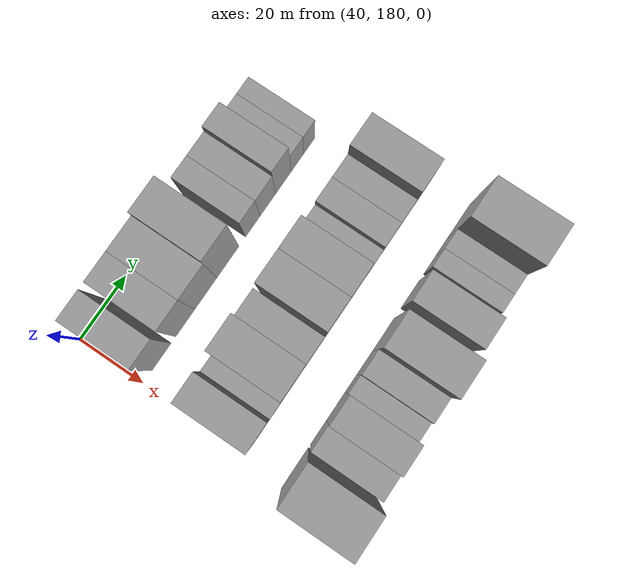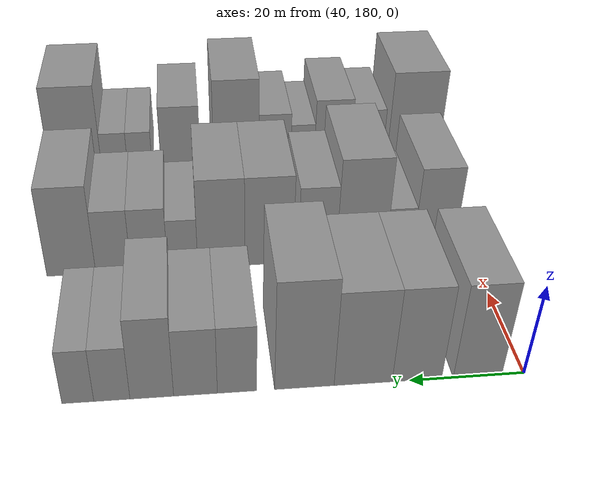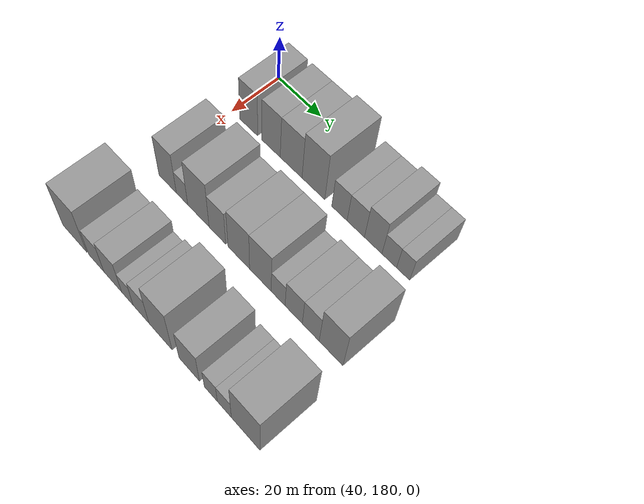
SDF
<sdf version="1.6">
 <world name="default">
  <model name="building_63">
   <static>1</static>
   <pose>50.0000 188.1334 0 0.000000 0.000000 0.000000</pose>
   <link name="link">
    <pose>0 0 10.50 0 0 0</pose>
    <collision name="collision"><geometry><box><size>20.0000 8.5099 21.0000</size></box></geometry></collision>
    <visual name="visual">
     <cast_shadows>0</cast_shadows>
     <geometry><box><size>20.0000 8.5099 21.0000</size></box></geometry>
     <material>
      <script>
       <uri>model://grey_wall/materials/scripts</uri>
       <uri>model://grey_wall/materials/textures</uri>
       <name>vrc/grey_wall</name>
      </script>
     </material>
    </visual>
   </link>
  </model>
  <model name="building_64">
   <static>1</static>
   <pose>50.0000 198.6740 0 0.000000 0.000000 0.000000</pose>
   <link name="link">
    <pose>0 0 10.50 0 0 0</pose>
    <collision name="collision"><geometry><box><size>20.0000 8.5712 21.0000</size></box></geometry></collision>
    <visual name="visual">
     <cast_shadows>0</cast_shadows>
     <geometry><box><size>20.0000 8.5712 21.0000</size></box></geometry>
     <material>
      <script>
       <uri>model://grey_wall/materials/scripts</uri>
       <uri>model://grey_wall/materials/textures</uri>
       <name>vrc/grey_wall</name>
      </script>
     </material>
    </visual>
   </link>
  </model>
  <model name="building_65">
   <static>1</static>
   <pose>50.0000 207.9277 0 0.000000 0.000000 0.000000</pose>
   <link name="link">
    <pose>0 0 10.50 0 0 0</pose>
    <collision name="collision"><geometry><box><size>20.0000 9.9363 21.0000</size></box></geometry></collision>
    <visual name="visual">
     <cast_shadows>0</cast_shadows>
     <geometry><box><size>20.0000 9.9363 21.0000</size></box></geometry>
     <material>
      <script>
       <uri>model://grey_wall/materials/scripts</uri>
       <uri>model://grey_wall/materials/textures</uri>
       <name>vrc/grey_wall</name>
      </script>
     </material>
    </visual>
   </link>
  </model>
  <model name="building_66">
   <static>1</static>
   <pose>50.0000 217.9356 0 0.000000 0.000000 0.000000</pose>
   <link name="link">
    <pose>0 0 12.00 0 0 0</pose>
    <collision name="collision"><geometry><box><size>20.0000 10.0795 24.0000</size></box></geometry></collision>
    <visual name="visual">
     <cast_shadows>0</cast_shadows>
     <geometry><box><size>20.0000 10.0795 24.0000</size></box></geometry>
     <material>
      <script>
       <uri>model://grey_wall/materials/scripts</uri>
       <uri>model://grey_wall/materials/textures</uri>
       <name>vrc/grey_wall</name>
      </script>
     </material>
    </visual>
   </link>
  </model>
  <model name="building_67">
   <static>1</static>
   <pose>50.0000 229.2814 0 0.000000 0.000000 0.000000</pose>
   <link name="link">
    <pose>0 0 7.50 0 0 0</pose>
    <collision name="collision"><geometry><box><size>20.0000 6.6119 15.0000</size></box></geometry></collision>
    <visual name="visual">
     <cast_shadows>0</cast_shadows>
     <geometry><box><size>20.0000 6.6119 15.0000</size></box></geometry>
     <material>
      <script>
       <uri>model://grey_wall/materials/scripts</uri>
       <uri>model://grey_wall/materials/textures</uri>
       <name>vrc/grey_wall</name>
      </script>
     </material>
    </visual>
   </link>
  </model>
  <model name="building_68">
   <static>1</static>
   <pose>50.0000 236.2317 0 0.000000 0.000000 0.000000</pose>
   <link name="link">
    <pose>0 0 7.50 0 0 0</pose>
    <collision name="collision"><geometry><box><size>20.0000 7.2888 15.0000</size></box></geometry></collision>
    <visual name="visual">
     <cast_shadows>0</cast_shadows>
     <geometry><box><size>20.0000 7.2888 15.0000</size></box></geometry>
     <material>
      <script>
       <uri>model://grey_wall/materials/scripts</uri>
       <uri>model://grey_wall/materials/textures</uri>
       <name>vrc/grey_wall</name>
      </script>
     </material>
    </visual>
   </link>
  </model>
  <model name="building_69">
   <static>1</static>
   <pose>50.0000 243.4868 0 0.000000 0.000000 0.000000</pose>
   <link name="link">
    <pose>0 0 9.00 0 0 0</pose>
    <collision name="collision"><geometry><box><size>20.0000 7.2214 18.0000</size></box></geometry></collision>
    <visual name="visual">
     <cast_shadows>0</cast_shadows>
     <geometry><box><size>20.0000 7.2214 18.0000</size></box></geometry>
     <material>
      <script>
       <uri>model://grey_wall/materials/scripts</uri>
       <uri>model://grey_wall/materials/textures</uri>
       <name>vrc/grey_wall</name>
      </script>
     </material>
    </visual>
   </link>
  </model>
  <model name="building_70">
   <static>1</static>
   <pose>50.0000 250.0693 0 0.000000 0.000000 0.000000</pose>
   <link name="link">
    <pose>0 0 6.00 0 0 0</pose>
    <collision name="collision"><geometry><box><size>20.0000 5.9436 12.0000</size></box></geometry></collision>
    <visual name="visual">
     <cast_shadows>0</cast_shadows>
     <geometry><box><size>20.0000 5.9436 12.0000</size></box></geometry>
     <material>
      <script>
       <uri>model://grey_wall/materials/scripts</uri>
       <uri>model://grey_wall/materials/textures</uri>
       <name>vrc/grey_wall</name>
      </script>
     </material>
    </visual>
   </link>
  </model>
  <model name="building_71">
   <static>1</static>
   <pose>50.0000 255.6571 0 0.000000 0.000000 0.000000</pose>
   <link name="link">
    <pose>0 0 6.00 0 0 0</pose>
    <collision name="collision"><geometry><box><size>20.0000 5.2319 12.0000</size></box></geometry></collision>
    <visual name="visual">
     <cast_shadows>0</cast_shadows>
     <geometry><box><size>20.0000 5.2319 12.0000</size></box></geometry>
     <material>
      <script>
       <uri>model://grey_wall/materials/scripts</uri>
       <uri>model://grey_wall/materials/textures</uri>
       <name>vrc/grey_wall</name>
      </script>
     </material>
    </visual>
   </link>
  </model>
  <model name="building_134">
   <static>1</static>
   <pose>82.0000 187.6518 0 0.000000 0.000000 0.000000</pose>
   <link name="link">
    <pose>0 0 10.50 0 0 0</pose>
    <collision name="collision"><geometry><box><size>20.0000 8.4010 21.0000</size></box></geometry></collision>
    <visual name="visual">
     <cast_shadows>0</cast_shadows>
     <geometry><box><size>20.0000 8.4010 21.0000</size></box></geometry>
     <material>
      <script>
       <uri>model://grey_wall/materials/scripts</uri>
       <uri>model://grey_wall/materials/textures</uri>
       <name>vrc/grey_wall</name>
      </script>
     </material>
    </visual>
   </link>
  </model>
  <model name="building_135">
   <static>1</static>
   <pose>82.0000 194.5746 0 0.000000 0.000000 0.000000</pose>
   <link name="link">
    <pose>0 0 6.00 0 0 0</pose>
    <collision name="collision"><geometry><box><size>20.0000 5.4446 12.0000</size></box></geometry></collision>
    <visual name="visual">
     <cast_shadows>0</cast_shadows>
     <geometry><box><size>20.0000 5.4446 12.0000</size></box></geometry>
     <material>
      <script>
       <uri>model://grey_wall/materials/scripts</uri>
       <uri>model://grey_wall/materials/textures</uri>
       <name>vrc/grey_wall</name>
      </script>
     </material>
    </visual>
   </link>
  </model>
  <model name="building_136">
   <static>1</static>
   <pose>82.0000 202.2947 0 0.000000 0.000000 0.000000</pose>
   <link name="link">
    <pose>0 0 12.00 0 0 0</pose>
    <collision name="collision"><geometry><box><size>20.0000 9.9957 24.0000</size></box></geometry></collision>
    <visual name="visual">
     <cast_shadows>0</cast_shadows>
     <geometry><box><size>20.0000 9.9957 24.0000</size></box></geometry>
     <material>
      <script>
       <uri>model://grey_wall/materials/scripts</uri>
       <uri>model://grey_wall/materials/textures</uri>
       <name>vrc/grey_wall</name>
      </script>
     </material>
    </visual>
   </link>
  </model>
  <model name="building_137">
   <static>1</static>
   <pose>82.0000 211.0833 0 0.000000 0.000000 0.000000</pose>
   <link name="link">
    <pose>0 0 9.00 0 0 0</pose>
    <collision name="collision"><geometry><box><size>20.0000 7.5814 18.0000</size></box></geometry></collision>
    <visual name="visual">
     <cast_shadows>0</cast_shadows>
     <geometry><box><size>20.0000 7.5814 18.0000</size></box></geometry>
     <material>
      <script>
       <uri>model://grey_wall/materials/scripts</uri>
       <uri>model://grey_wall/materials/textures</uri>
       <name>vrc/grey_wall</name>
      </script>
     </material>
    </visual>
   </link>
  </model>
  <model name="building_138">
   <static>1</static>
   <pose>82.0000 220.6596 0 0.000000 0.000000 0.000000</pose>
   <link name="link">
    <pose>0 0 10.50 0 0 0</pose>
    <collision name="collision"><geometry><box><size>20.0000 9.5712 21.0000</size></box></geometry></collision>
    <visual name="visual">
     <cast_shadows>0</cast_shadows>
     <geometry><box><size>20.0000 9.5712 21.0000</size></box></geometry>
     <material>
      <script>
       <uri>model://grey_wall/materials/scripts</uri>
       <uri>model://grey_wall/materials/textures</uri>
       <name>vrc/grey_wall</name>
      </script>
     </material>
    </visual>
   </link>
  </model>
  <model name="building_139">
   <static>1</static>
   <pose>82.0000 230.0938 0 0.000000 0.000000 0.000000</pose>
   <link name="link">
    <pose>0 0 10.50 0 0 0</pose>
    <collision name="collision"><geometry><box><size>20.0000 9.2970 21.0000</size></box></geometry></collision>
    <visual name="visual">
     <cast_shadows>0</cast_shadows>
     <geometry><box><size>20.0000 9.2970 21.0000</size></box></geometry>
     <material>
      <script>
       <uri>model://grey_wall/materials/scripts</uri>
       <uri>model://grey_wall/materials/textures</uri>
       <name>vrc/grey_wall</name>
      </script>
     </material>
    </visual>
   </link>
  </model>
  <model name="building_140">
   <static>1</static>
   <pose>82.0000 237.6966 0 0.000000 0.000000 0.000000</pose>
   <link name="link">
    <pose>0 0 6.00 0 0 0</pose>
    <collision name="collision"><geometry><box><size>20.0000 5.9086 12.0000</size></box></geometry></collision>
    <visual name="visual">
     <cast_shadows>0</cast_shadows>
     <geometry><box><size>20.0000 5.9086 12.0000</size></box></geometry>
     <material>
      <script>
       <uri>model://grey_wall/materials/scripts</uri>
       <uri>model://grey_wall/materials/textures</uri>
       <name>vrc/grey_wall</name>
      </script>
     </material>
    </visual>
   </link>
  </model>
  <model name="building_141">
   <static>1</static>
   <pose>82.0000 244.2305 0 0.000000 0.000000 0.000000</pose>
   <link name="link">
    <pose>0 0 7.50 0 0 0</pose>
    <collision name="collision"><geometry><box><size>20.0000 7.1593 15.0000</size></box></geometry></collision>
    <visual name="visual">
     <cast_shadows>0</cast_shadows>
     <geometry><box><size>20.0000 7.1593 15.0000</size></box></geometry>
     <material>
      <script>
       <uri>model://grey_wall/materials/scripts</uri>
       <uri>model://grey_wall/materials/textures</uri>
       <name>vrc/grey_wall</name>
      </script>
     </material>
    </visual>
   </link>
  </model>
  <model name="building_142">
   <static>1</static>
   <pose>82.0000 251.2373 0 0.000000 0.000000 0.000000</pose>
   <link name="link">
    <pose>0 0 7.50 0 0 0</pose>
    <collision name="collision"><geometry><box><size>20.0000 6.8542 15.0000</size></box></geometry></collision>
    <visual name="visual">
     <cast_shadows>0</cast_shadows>
     <geometry><box><size>20.0000 6.8542 15.0000</size></box></geometry>
     <material>
      <script>
       <uri>model://grey_wall/materials/scripts</uri>
       <uri>model://grey_wall/materials/textures</uri>
       <name>vrc/grey_wall</name>
      </script>
     </material>
    </visual>
   </link>
  </model>
  <model name="building_143">
   <static>1</static>
   <pose>82.0000 259.3766 0 0.000000 0.000000 0.000000</pose>
   <link name="link">
    <pose>0 0 10.50 0 0 0</pose>
    <collision name="collision"><geometry><box><size>20.0000 9.4245 21.0000</size></box></geometry></collision>
    <visual name="visual">
     <cast_shadows>0</cast_shadows>
     <geometry><box><size>20.0000 9.4245 21.0000</size></box></geometry>
     <material>
      <script>
       <uri>model://grey_wall/materials/scripts</uri>
       <uri>model://grey_wall/materials/textures</uri>
       <name>vrc/grey_wall</name>
      </script>
     </material>
    </visual>
   </link>
  </model>
  <model name="building_212">
   <static>1</static>
   <pose>114.0000 184.3398 0 0.000000 0.000000 0.000000</pose>
   <link name="link">
    <pose>0 0 12.00 0 0 0</pose>
    <collision name="collision"><geometry><box><size>20.0000 11.9825 24.0000</size></box></geometry></collision>
    <visual name="visual">
     <cast_shadows>0</cast_shadows>
     <geometry><box><size>20.0000 11.9825 24.0000</size></box></geometry>
     <material>
      <script>
       <uri>model://grey_wall/materials/scripts</uri>
       <uri>model://grey_wall/materials/textures</uri>
       <name>vrc/grey_wall</name>
      </script>
     </material>
    </visual>
   </link>
  </model>
  <model name="building_213">
   <static>1</static>
   <pose>114.0000 195.0017 0 0.000000 0.000000 0.000000</pose>
   <link name="link">
    <pose>0 0 7.50 0 0 0</pose>
    <collision name="collision"><geometry><box><size>20.0000 7.3414 15.0000</size></box></geometry></collision>
    <visual name="visual">
     <cast_shadows>0</cast_shadows>
     <geometry><box><size>20.0000 7.3414 15.0000</size></box></geometry>
     <material>
      <script>
       <uri>model://grey_wall/materials/scripts</uri>
       <uri>model://grey_wall/materials/textures</uri>
       <name>vrc/grey_wall</name>
      </script>
     </material>
    </visual>
   </link>
  </model>
  <model name="building_214">
   <static>1</static>
   <pose>114.0000 202.8927 0 0.000000 0.000000 0.000000</pose>
   <link name="link">
    <pose>0 0 9.00 0 0 0</pose>
    <collision name="collision"><geometry><box><size>20.0000 8.4406 18.0000</size></box></geometry></collision>
    <visual name="visual">
     <cast_shadows>0</cast_shadows>
     <geometry><box><size>20.0000 8.4406 18.0000</size></box></geometry>
     <material>
      <script>
       <uri>model://grey_wall/materials/scripts</uri>
       <uri>model://grey_wall/materials/textures</uri>
       <name>vrc/grey_wall</name>
      </script>
     </material>
    </visual>
   </link>
  </model>
  <model name="building_215">
   <static>1</static>
   <pose>114.0000 209.8138 0 0.000000 0.000000 0.000000</pose>
   <link name="link">
    <pose>0 0 6.00 0 0 0</pose>
    <collision name="collision"><geometry><box><size>20.0000 5.4017 12.0000</size></box></geometry></collision>
    <visual name="visual">
     <cast_shadows>0</cast_shadows>
     <geometry><box><size>20.0000 5.4017 12.0000</size></box></geometry>
     <material>
      <script>
       <uri>model://grey_wall/materials/scripts</uri>
       <uri>model://grey_wall/materials/textures</uri>
       <name>vrc/grey_wall</name>
      </script>
     </material>
    </visual>
   </link>
  </model>
  <model name="building_216">
   <static>1</static>
   <pose>114.0000 216.1209 0 0.000000 0.000000 0.000000</pose>
   <link name="link">
    <pose>0 0 7.50 0 0 0</pose>
    <collision name="collision"><geometry><box><size>20.0000 7.2126 15.0000</size></box></geometry></collision>
    <visual name="visual">
     <cast_shadows>0</cast_shadows>
     <geometry><box><size>20.0000 7.2126 15.0000</size></box></geometry>
     <material>
      <script>
       <uri>model://grey_wall/materials/scripts</uri>
       <uri>model://grey_wall/materials/textures</uri>
       <name>vrc/grey_wall</name>
      </script>
     </material>
    </visual>
   </link>
  </model>
  <model name="building_217">
   <static>1</static>
   <pose>114.0000 224.8561 0 0.000000 0.000000 0.000000</pose>
   <link name="link">
    <pose>0 0 12.00 0 0 0</pose>
    <collision name="collision"><geometry><box><size>20.0000 10.2577 24.0000</size></box></geometry></collision>
    <visual name="visual">
     <cast_shadows>0</cast_shadows>
     <geometry><box><size>20.0000 10.2577 24.0000</size></box></geometry>
     <material>
      <script>
       <uri>model://grey_wall/materials/scripts</uri>
       <uri>model://grey_wall/materials/textures</uri>
       <name>vrc/grey_wall</name>
      </script>
     </material>
    </visual>
   </link>
  </model>
  <model name="building_218">
   <static>1</static>
   <pose>114.0000 237.3900 0 0.000000 0.000000 0.000000</pose>
   <link name="link">
    <pose>0 0 9.00 0 0 0</pose>
    <collision name="collision"><geometry><box><size>20.0000 8.8101 18.0000</size></box></geometry></collision>
    <visual name="visual">
     <cast_shadows>0</cast_shadows>
     <geometry><box><size>20.0000 8.8101 18.0000</size></box></geometry>
     <material>
      <script>
       <uri>model://grey_wall/materials/scripts</uri>
       <uri>model://grey_wall/materials/textures</uri>
       <name>vrc/grey_wall</name>
      </script>
     </material>
    </visual>
   </link>
  </model>
  <model name="building_219">
   <static>1</static>
   <pose>114.0000 246.5191 0 0.000000 0.000000 0.000000</pose>
   <link name="link">
    <pose>0 0 6.00 0 0 0</pose>
    <collision name="collision"><geometry><box><size>20.0000 5.4481 12.0000</size></box></geometry></collision>
    <visual name="visual">
     <cast_shadows>0</cast_shadows>
     <geometry><box><size>20.0000 5.4481 12.0000</size></box></geometry>
     <material>
      <script>
       <uri>model://grey_wall/materials/scripts</uri>
       <uri>model://grey_wall/materials/textures</uri>
       <name>vrc/grey_wall</name>
      </script>
     </material>
    </visual>
   </link>
  </model>
  <model name="building_220">
   <static>1</static>
   <pose>114.0000 252.1282 0 0.000000 0.000000 0.000000</pose>
   <link name="link">
    <pose>0 0 6.00 0 0 0</pose>
    <collision name="collision"><geometry><box><size>20.0000 5.7700 12.0000</size></box></geometry></collision>
    <visual name="visual">
     <cast_shadows>0</cast_shadows>
     <geometry><box><size>20.0000 5.7700 12.0000</size></box></geometry>
     <material>
      <script>
       <uri>model://grey_wall/materials/scripts</uri>
       <uri>model://grey_wall/materials/textures</uri>
       <name>vrc/grey_wall</name>
      </script>
     </material>
    </visual>
   </link>
  </model>
  <model name="building_221">
   <static>1</static>
   <pose>114.0000 260.7251 0 0.000000 0.000000 0.000000</pose>
   <link name="link">
    <pose>0 0 12.00 0 0 0</pose>
    <collision name="collision"><geometry><box><size>20.0000 11.4239 24.0000</size></box></geometry></collision>
    <visual name="visual">
     <cast_shadows>0</cast_shadows>
     <geometry><box><size>20.0000 11.4239 24.0000</size></box></geometry>
     <material>
      <script>
       <uri>model://grey_wall/materials/scripts</uri>
       <uri>model://grey_wall/materials/textures</uri>
       <name>vrc/grey_wall</name>
      </script>
     </material>
    </visual>
   </link>
  </model>
 </world>
</sdf>
